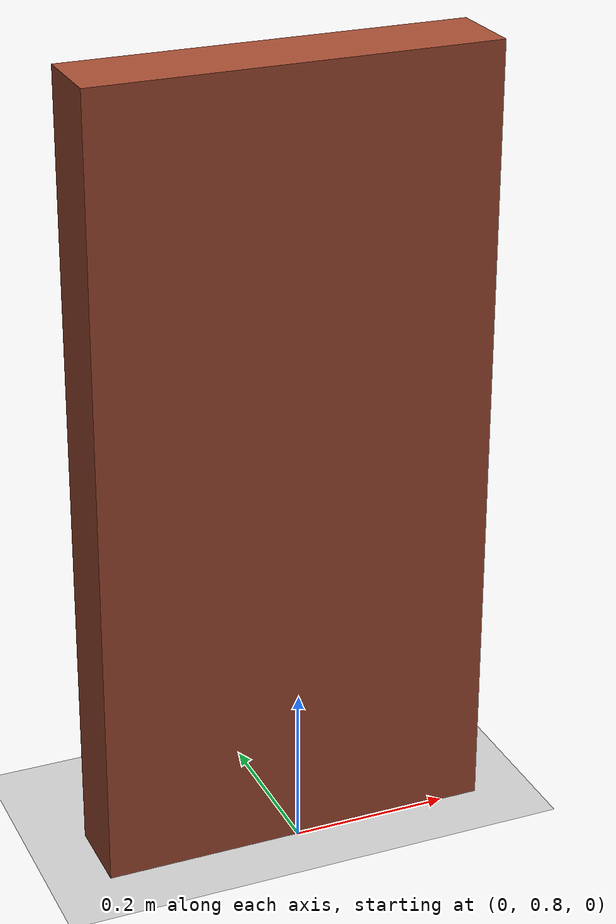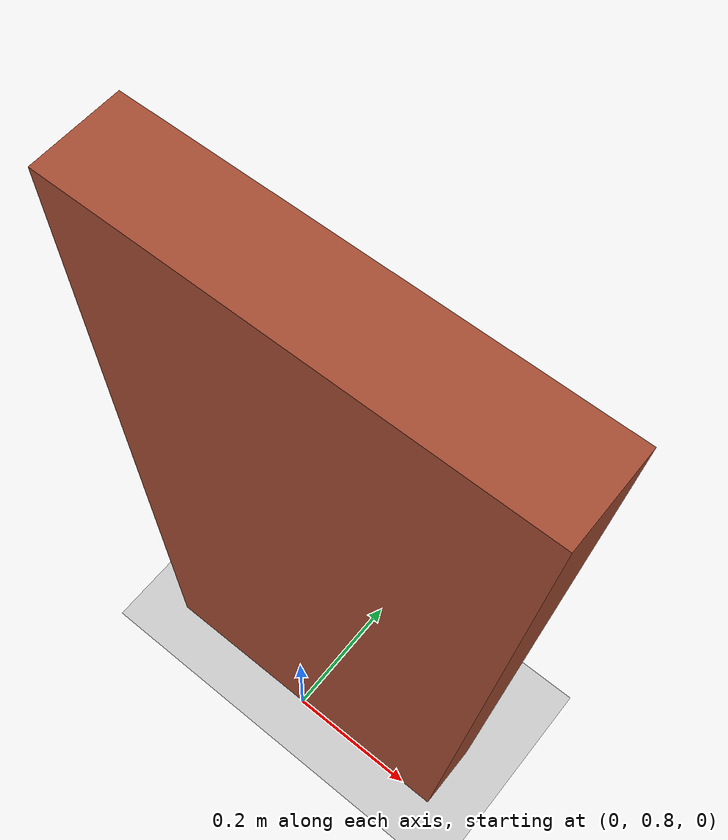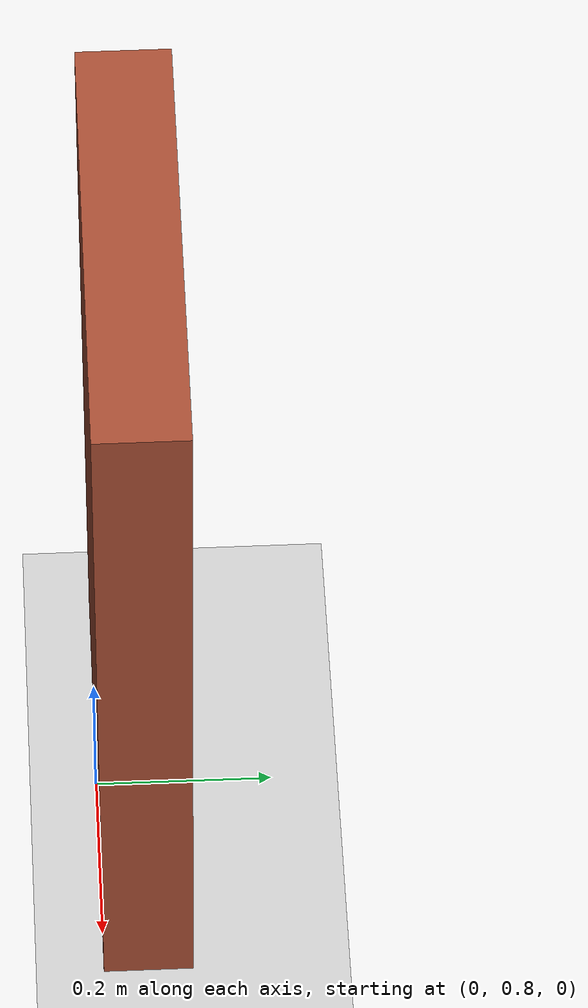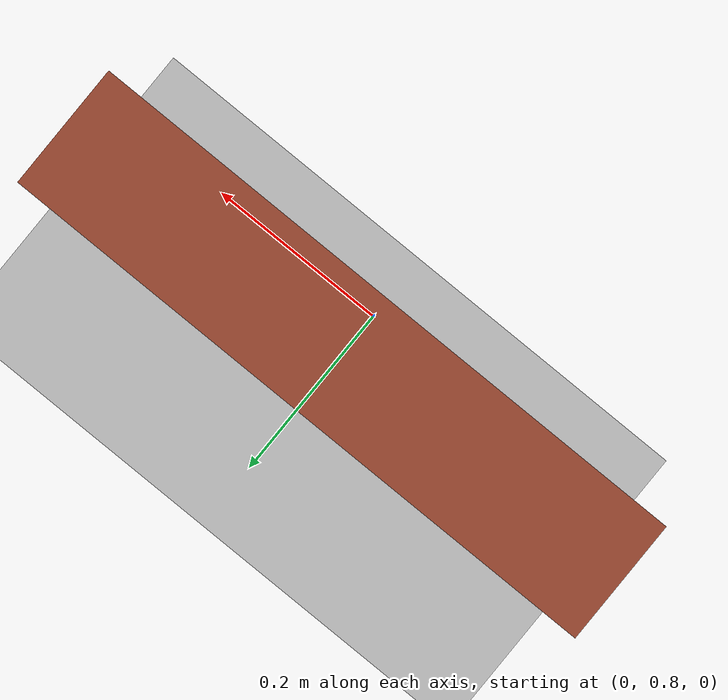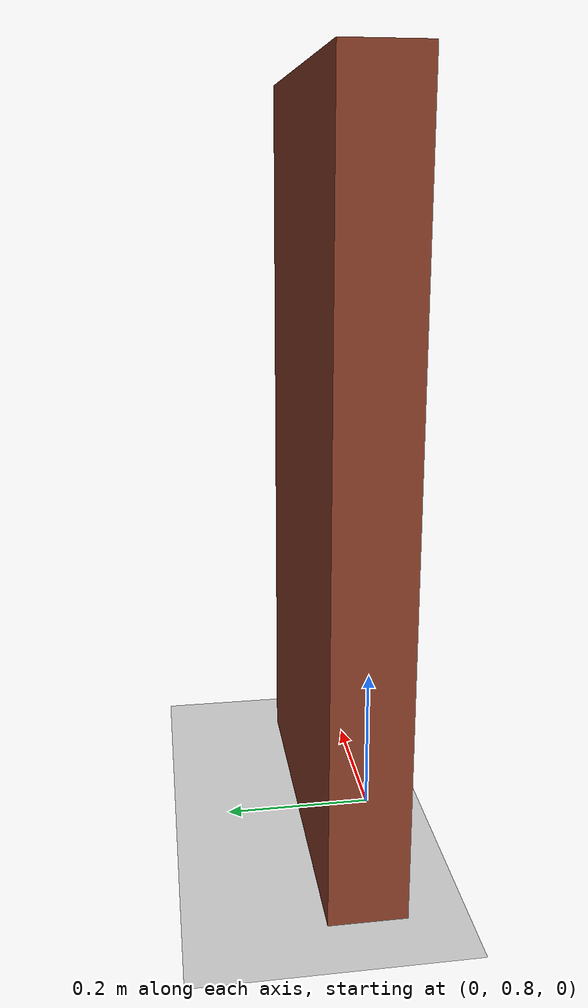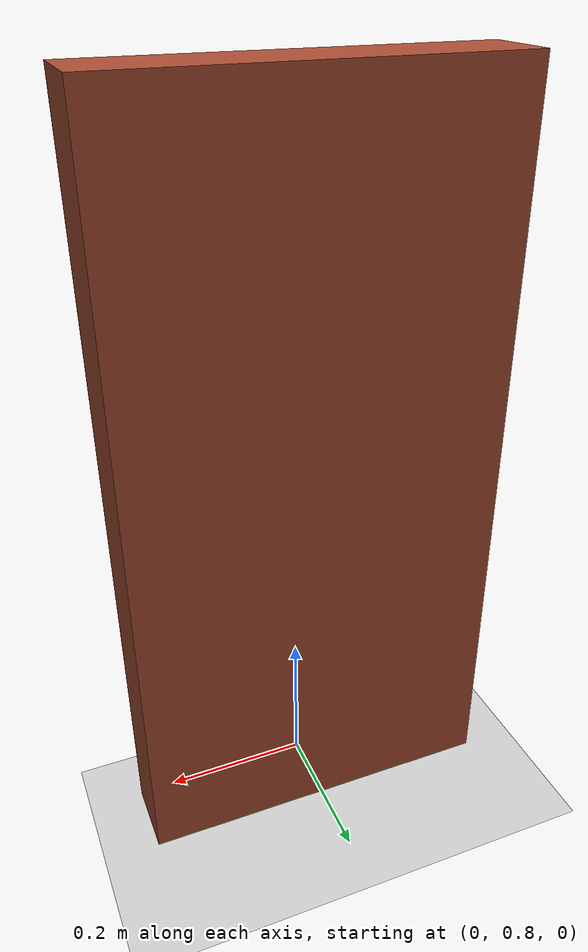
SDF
<?xml version="1.0" ?>
<sdf version="1.6">
  <world name="empty">
    <physics name="1ms" type="ignored">
      <max_step_size>0.001</max_step_size>
      <real_time_factor>1.0</real_time_factor>
    </physics>
    <plugin
      filename="ignition-gazebo-physics-system"
      name="gz::sim::systems::Physics">
    </plugin>
    <plugin
      filename="ignition-gazebo-user-commands-system"
      name="gz::sim::systems::UserCommands">
    </plugin>
    <plugin
      filename="ignition-gazebo-scene-broadcaster-system"
      name="gz::sim::systems::SceneBroadcaster">
    </plugin>
    <plugin
      filename="ignition-gazebo-contact-system"
      name="gz::sim::systems::Contact">
    </plugin>
    <plugin
      filename="ignition-gazebo-forcetorque-system"
      name="ignition::gazebo::systems::ForceTorque">
    </plugin>

    <light type="directional" name="sun">
      <cast_shadows>true</cast_shadows>
      <pose>0 0 10 0 0 0</pose>
      <diffuse>0.8 0.8 0.8 1</diffuse>
      <specular>0.2 0.2 0.2 1</specular>
      <attenuation>
        <range>1000</range>
        <constant>0.9</constant>
        <linear>0.01</linear>
        <quadratic>0.001</quadratic>
      </attenuation>
      <direction>-0.5 0.1 -0.9</direction>
    </light>

    <model name="ground_plane">
      <static>true</static>
      <link name="link">
        <collision name="collision">
          <geometry>
            <plane>
              <normal>0 0 1</normal>
              <size>100 100</size>
            </plane>
          </geometry>
        </collision>
        <visual name="visual">
          <geometry>
            <plane>
              <normal>0 0 1</normal>
              <size>100 100</size>
            </plane>
          </geometry>
          <material>
            <ambient>0.8 0.8 0.8 1</ambient>
            <diffuse>0.8 0.8 0.8 1</diffuse>
            <specular>0.8 0.8 0.8 1</specular>
          </material>
        </visual>
      </link>
    </model>

    <!-- Wall -->
    <model name="stiff_wall">
      <static>true</static>
      <pose>0.0 0.85 0.5 0.0 0.0 0.0</pose>
      <link name="stiff_wall_link">
        <inertial>
          <mass>100</mass>
          <inertia>
            <ixy>0</ixy>
            <ixz>0</ixz>
            <iyy>1</iyy>
            <iyz>0</iyz>
            <izz>1</izz>
          </inertia>
        </inertial>
        <visual name="stiff_wall_visual">
          <geometry>
            <box>
              <size>0.50 0.1 1.0</size>
            </box>
          </geometry>
          <material>
            <script>
              <name>Gazebo/Bricks</name>
              <uri>file://media/materials/scripts/gazebo.material</uri>
            </script>
          </material>
        </visual>
        <collision name="stiff_wall_collision">
          <geometry>
            <box>
              <size>0.50 0.1 1.0</size>
            </box>
          </geometry>
          <surface>
            <friction>
              <ode>
                <mu>0.3</mu>
                <mu2>0.3</mu2>
              </ode>
            </friction>
            <contact>
              <ode>
                <kp>1000000</kp>
                <kd>800</kd>
                <min_depth>0.0</min_depth>
              </ode>
            </contact>
          </surface>
        </collision>
      </link>
    </model>

  </world>
</sdf>
